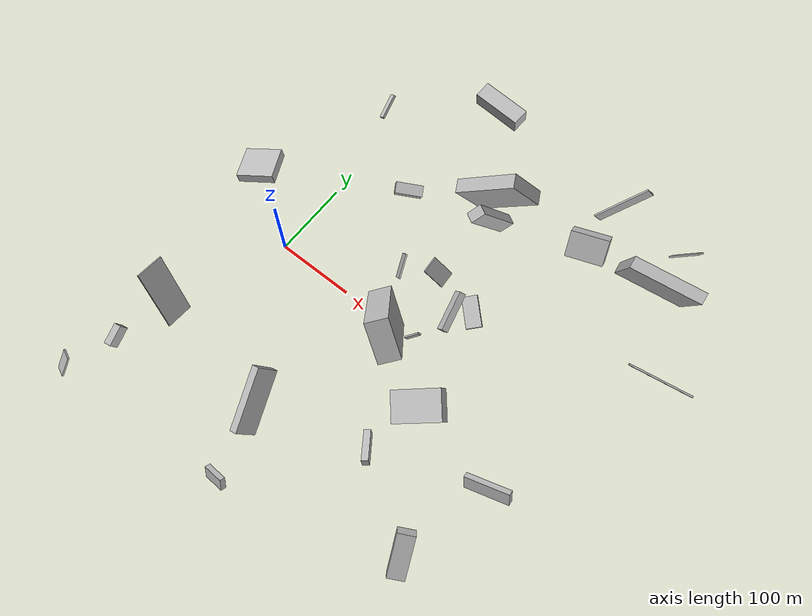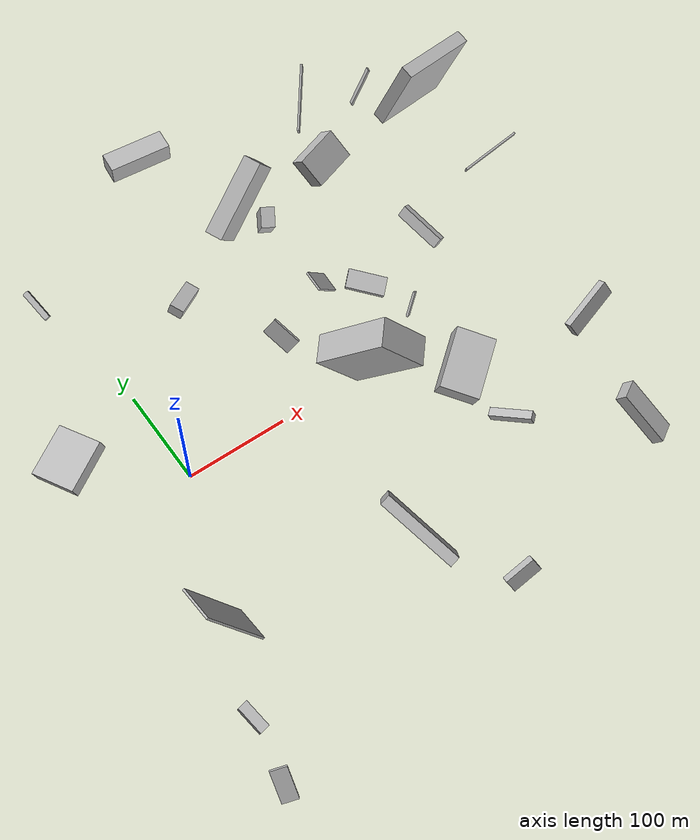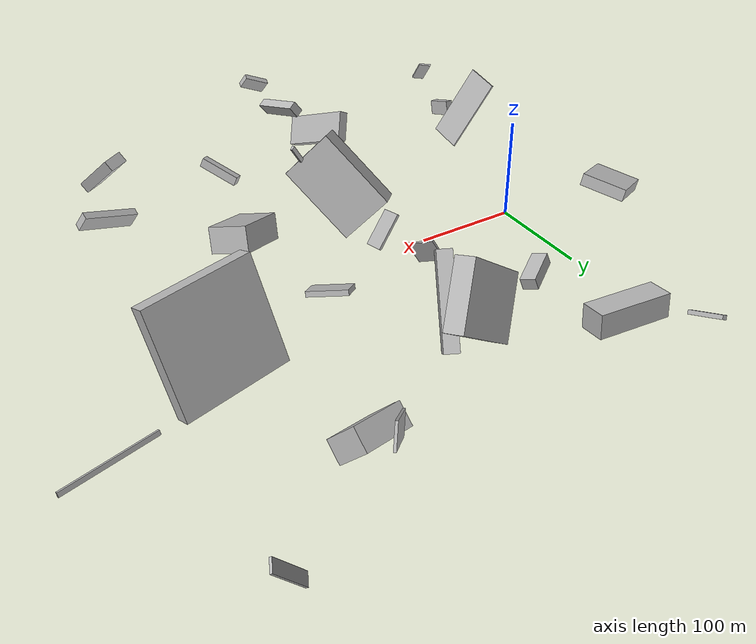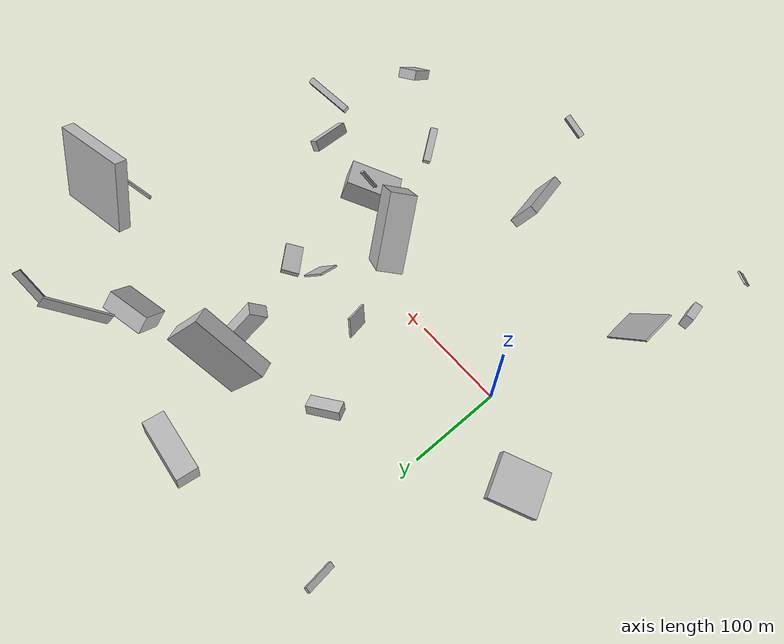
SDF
<sdf version="1.6">
 <world name="default">
  <scene>
   <sky><clouds><speed>12</speed></clouds></sky>
   <ambient>0.4 0.4 0.4 1</ambient>
   <background>0.7 0.7 0.7 1</background>
   <shadows>1</shadows>
  </scene>
  <gravity>0 0 -9.8066</gravity>
  <magnetic_field>6e-06 2.3e-05 -4.2e-05</magnetic_field>
  <physics default="0" name="default_physics" type="ode">
   <ode>
    <solver>
     <type>quick</type>
     <iters>10</iters>
     <sor>1.0</sor>
     <use_dynamic_moi_rescaling>0</use_dynamic_moi_rescaling>
    </solver>
    <constraints>
     <cfm>0</cfm>
     <erp>0.2</erp>
     <contact_max_correcting_vel>100</contact_max_correcting_vel>
     <contact_surface_layer>0.001</contact_surface_layer>
    </constraints>
   </ode>
   <max_step_size>0.004</max_step_size>
   <real_time_factor>1</real_time_factor>
   <real_time_update_rate>250</real_time_update_rate>
  </physics>
  <light name="sun" type="directional">
   <pose>0 0 10 0 0 0</pose>
   <diffuse>0.8 0.8 0.8 1</diffuse>
   <specular>0.2 0.2 0.2 1</specular>
   <attenuation>
    <range>1000</range>
    <constant>0.9</constant>
    <linear>0.01</linear>
    <quadratic>0.001</quadratic>
   </attenuation>
   <direction>-0.5 0.1 -0.9</direction>
  </light>
  <model name="building_1">
   <static>0</static>
   <pose>308.7840745752985 272.22991999487664 68.75958967545226 -0.6357820430948093 -0.007961976463220633 2.4669861925779997</pose>
   <link name="link">
    <gravity>0</gravity>
    <pose>0 0 9.5 0 0 0</pose>
    <collision name="collision"><geometry><box><size>2 67 19</size></box></geometry></collision>
    <visual name="visual">
     <cast_shadows>0</cast_shadows>
     <geometry><box><size>2 67 19</size></box></geometry>
     <material>
      <script>
       <uri>model://HANNAS_wall/materials/scripts</uri>
       <uri>model://HANNAS_wall/materials/textures</uri>
       <name>vrc/HANNAS_wall</name>
      </script>
     </material>
    </visual>
   </link>
  </model>
  <model name="building_2">
   <static>0</static>
   <pose>143.83098529914741 55.39754747345388 44.449182127909104 2.6657452438630824 -0.26057554864743504 -2.650999959253456</pose>
   <link name="link">
    <gravity>0</gravity>
    <pose>0 0 11.0 0 0 0</pose>
    <collision name="collision"><geometry><box><size>2 30 22</size></box></geometry></collision>
    <visual name="visual">
     <cast_shadows>0</cast_shadows>
     <geometry><box><size>2 30 22</size></box></geometry>
     <material>
      <script>
       <uri>model://HANNAS_wall/materials/scripts</uri>
       <uri>model://HANNAS_wall/materials/textures</uri>
       <name>vrc/HANNAS_wall</name>
      </script>
     </material>
    </visual>
   </link>
  </model>
  <model name="building_3">
   <static>0</static>
   <pose>397.44863163991 290.67174915145927 25.687397450771513 -2.424512895292618 0.9368688958037269 -2.9882040418300893</pose>
   <link name="link">
    <gravity>0</gravity>
    <pose>0 0 1.0 0 0 0</pose>
    <collision name="collision"><geometry><box><size>42 10 2</size></box></geometry></collision>
    <visual name="visual">
     <cast_shadows>0</cast_shadows>
     <geometry><box><size>42 10 2</size></box></geometry>
     <material>
      <script>
       <uri>model://HANNAS_wall/materials/scripts</uri>
       <uri>model://HANNAS_wall/materials/textures</uri>
       <name>vrc/HANNAS_wall</name>
      </script>
     </material>
    </visual>
   </link>
  </model>
  <model name="building_4">
   <static>0</static>
   <pose>186.98799595842698 63.15633073988944 75.3947070669845 -0.34652708124709847 -0.8204738249062611 -2.8744541087608435</pose>
   <link name="link">
    <gravity>0</gravity>
    <pose>0 0 1.0 0 0 0</pose>
    <collision name="collision"><geometry><box><size>33 20 2</size></box></geometry></collision>
    <visual name="visual">
     <cast_shadows>0</cast_shadows>
     <geometry><box><size>33 20 2</size></box></geometry>
     <material>
      <script>
       <uri>model://HANNAS_wall/materials/scripts</uri>
       <uri>model://HANNAS_wall/materials/textures</uri>
       <name>vrc/HANNAS_wall</name>
      </script>
     </material>
    </visual>
   </link>
  </model>
  <model name="building_5">
   <static>0</static>
   <pose>276.6743200845923 215.7186129921865 28.159391215765567 1.351157327305445 0.7294115463542892 1.6883235573132476</pose>
   <link name="link">
    <gravity>0</gravity>
    <pose>0 0 23.5 0 0 0</pose>
    <collision name="collision"><geometry><box><size>20 33 47</size></box></geometry></collision>
    <visual name="visual">
     <cast_shadows>0</cast_shadows>
     <geometry><box><size>20 33 47</size></box></geometry>
     <material>
      <script>
       <uri>model://HANNAS_wall/materials/scripts</uri>
       <uri>model://HANNAS_wall/materials/textures</uri>
       <name>vrc/HANNAS_wall</name>
      </script>
     </material>
    </visual>
   </link>
  </model>
  <model name="building_6">
   <static>0</static>
   <pose>163.17682792979528 -15.073081395739367 94.12427732634096 2.372557906813557 -0.24389878375002438 0.841616577350936</pose>
   <link name="link">
    <gravity>0</gravity>
    <pose>0 0 26.0 0 0 0</pose>
    <collision name="collision"><geometry><box><size>27 80 52</size></box></geometry></collision>
    <visual name="visual">
     <cast_shadows>0</cast_shadows>
     <geometry><box><size>27 80 52</size></box></geometry>
     <material>
      <script>
       <uri>model://HANNAS_wall/materials/scripts</uri>
       <uri>model://HANNAS_wall/materials/textures</uri>
       <name>vrc/HANNAS_wall</name>
      </script>
     </material>
    </visual>
   </link>
  </model>
  <model name="building_7">
   <static>0</static>
   <pose>150.12975383620602 -260.2685569589833 78.14247546153233 0.7704423070084611 0.9414539491785526 -0.9314214290452474</pose>
   <link name="link">
    <gravity>0</gravity>
    <pose>0 0 3.0 0 0 0</pose>
    <collision name="collision"><geometry><box><size>14 27 6</size></box></geometry></collision>
    <visual name="visual">
     <cast_shadows>0</cast_shadows>
     <geometry><box><size>14 27 6</size></box></geometry>
     <material>
      <script>
       <uri>model://HANNAS_wall/materials/scripts</uri>
       <uri>model://HANNAS_wall/materials/textures</uri>
       <name>vrc/HANNAS_wall</name>
      </script>
     </material>
    </visual>
   </link>
  </model>
  <model name="building_8">
   <static>0</static>
   <pose>257.85273456441183 -153.7866384260762 62.46907579512253 1.9399463578847016 0.18628972481341824 -2.458325907124283</pose>
   <link name="link">
    <gravity>0</gravity>
    <pose>0 0 19.5 0 0 0</pose>
    <collision name="collision"><geometry><box><size>8 9 39</size></box></geometry></collision>
    <visual name="visual">
     <cast_shadows>0</cast_shadows>
     <geometry><box><size>8 9 39</size></box></geometry>
     <material>
      <script>
       <uri>model://HANNAS_wall/materials/scripts</uri>
       <uri>model://HANNAS_wall/materials/textures</uri>
       <name>vrc/HANNAS_wall</name>
      </script>
     </material>
    </visual>
   </link>
  </model>
  <model name="building_9">
   <static>0</static>
   <pose>382.6782504958925 192.9249482764344 89.53019026581796 0.3532844729908395 0.07824573498613278 0.1764430056249797</pose>
   <link name="link">
    <gravity>0</gravity>
    <pose>0 0 40.0 0 0 0</pose>
    <collision name="collision"><geometry><box><size>80 13 80</size></box></geometry></collision>
    <visual name="visual">
     <cast_shadows>0</cast_shadows>
     <geometry><box><size>80 13 80</size></box></geometry>
     <material>
      <script>
       <uri>model://HANNAS_wall/materials/scripts</uri>
       <uri>model://HANNAS_wall/materials/textures</uri>
       <name>vrc/HANNAS_wall</name>
      </script>
     </material>
    </visual>
   </link>
  </model>
  <model name="building_10">
   <static>0</static>
   <pose>-52.8179532239395 -144.7720997901623 46.12270945832282 -0.44655396322156515 1.0408222577623247 -0.35210621416903454</pose>
   <link name="link">
    <gravity>0</gravity>
    <pose>0 0 1.0 0 0 0</pose>
    <collision name="collision"><geometry><box><size>80 35 2</size></box></geometry></collision>
    <visual name="visual">
     <cast_shadows>0</cast_shadows>
     <geometry><box><size>80 35 2</size></box></geometry>
     <material>
      <script>
       <uri>model://HANNAS_wall/materials/scripts</uri>
       <uri>model://HANNAS_wall/materials/textures</uri>
       <name>vrc/HANNAS_wall</name>
      </script>
     </material>
    </visual>
   </link>
  </model>
  <model name="building_11">
   <static>0</static>
   <pose>240.00918904306857 62.83135605681234 36.15287356119527 -2.8233257392720583 0.19044412238532013 -0.765669832340403</pose>
   <link name="link">
    <gravity>0</gravity>
    <pose>0 0 2.5 0 0 0</pose>
    <collision name="collision"><geometry><box><size>38 19 5</size></box></geometry></collision>
    <visual name="visual">
     <cast_shadows>0</cast_shadows>
     <geometry><box><size>38 19 5</size></box></geometry>
     <material>
      <script>
       <uri>model://HANNAS_wall/materials/scripts</uri>
       <uri>model://HANNAS_wall/materials/textures</uri>
       <name>vrc/HANNAS_wall</name>
      </script>
     </material>
    </visual>
   </link>
  </model>
  <model name="building_12">
   <static>0</static>
   <pose>-63.90070836670797 66.48687352988375 42.48647988072367 -2.594192097649926 -1.3077163025460474 3.073420445451388</pose>
   <link name="link">
    <gravity>0</gravity>
    <pose>0 0 24.0 0 0 0</pose>
    <collision name="collision"><geometry><box><size>12 44 48</size></box></geometry></collision>
    <visual name="visual">
     <cast_shadows>0</cast_shadows>
     <geometry><box><size>12 44 48</size></box></geometry>
     <material>
      <script>
       <uri>model://HANNAS_wall/materials/scripts</uri>
       <uri>model://HANNAS_wall/materials/textures</uri>
       <name>vrc/HANNAS_wall</name>
      </script>
     </material>
    </visual>
   </link>
  </model>
  <model name="building_13">
   <static>0</static>
   <pose>87.9928933723127 135.91294149852845 40.15567269408828 -1.2590600930849845 0.16537173834495253 0.5820139248570424</pose>
   <link name="link">
    <gravity>0</gravity>
    <pose>0 0 7.0 0 0 0</pose>
    <collision name="collision"><geometry><box><size>34 11 14</size></box></geometry></collision>
    <visual name="visual">
     <cast_shadows>0</cast_shadows>
     <geometry><box><size>34 11 14</size></box></geometry>
     <material>
      <script>
       <uri>model://HANNAS_wall/materials/scripts</uri>
       <uri>model://HANNAS_wall/materials/textures</uri>
       <name>vrc/HANNAS_wall</name>
      </script>
     </material>
    </visual>
   </link>
  </model>
  <model name="building_14">
   <static>0</static>
   <pose>272.0884415083147 -77.09533161235323 24.893202159302014 1.3391744387372229 0.3053959196053089 -2.505581593935873</pose>
   <link name="link">
    <gravity>0</gravity>
    <pose>0 0 19.0 0 0 0</pose>
    <collision name="collision"><geometry><box><size>59 25 38</size></box></geometry></collision>
    <visual name="visual">
     <cast_shadows>0</cast_shadows>
     <geometry><box><size>59 25 38</size></box></geometry>
     <material>
      <script>
       <uri>model://HANNAS_wall/materials/scripts</uri>
       <uri>model://HANNAS_wall/materials/textures</uri>
       <name>vrc/HANNAS_wall</name>
      </script>
     </material>
    </visual>
   </link>
  </model>
  <model name="building_15">
   <static>0</static>
   <pose>241.10006204083214 18.0204977942098 181.74160532533926 2.024677819130178 -0.9595528498310085 -0.17320150939945925</pose>
   <link name="link">
    <gravity>0</gravity>
    <pose>0 0 20.5 0 0 0</pose>
    <collision name="collision"><geometry><box><size>10 7 41</size></box></geometry></collision>
    <visual name="visual">
     <cast_shadows>0</cast_shadows>
     <geometry><box><size>10 7 41</size></box></geometry>
     <material>
      <script>
       <uri>model://HANNAS_wall/materials/scripts</uri>
       <uri>model://HANNAS_wall/materials/textures</uri>
       <name>vrc/HANNAS_wall</name>
      </script>
     </material>
    </visual>
   </link>
  </model>
  <model name="building_16">
   <static>0</static>
   <pose>90.40212908440378 276.18360623794587 99.3014849037322 1.5512154521584904 -0.13054374748597794 1.4905066518854306</pose>
   <link name="link">
    <gravity>0</gravity>
    <pose>0 0 30.0 0 0 0</pose>
    <collision name="collision"><geometry><box><size>20 19 60</size></box></geometry></collision>
    <visual name="visual">
     <cast_shadows>0</cast_shadows>
     <geometry><box><size>20 19 60</size></box></geometry>
     <material>
      <script>
       <uri>model://HANNAS_wall/materials/scripts</uri>
       <uri>model://HANNAS_wall/materials/textures</uri>
       <name>vrc/HANNAS_wall</name>
      </script>
     </material>
    </visual>
   </link>
  </model>
  <model name="building_17">
   <static>0</static>
   <pose>-69.8187755465493 -215.74082842841733 14.39928191090841 -1.8870052150717163 1.2806544259441373 1.4245678850808436</pose>
   <link name="link">
    <gravity>0</gravity>
    <pose>0 0 4.5 0 0 0</pose>
    <collision name="collision"><geometry><box><size>16 26 9</size></box></geometry></collision>
    <visual name="visual">
     <cast_shadows>0</cast_shadows>
     <geometry><box><size>16 26 9</size></box></geometry>
     <material>
      <script>
       <uri>model://HANNAS_wall/materials/scripts</uri>
       <uri>model://HANNAS_wall/materials/textures</uri>
       <name>vrc/HANNAS_wall</name>
      </script>
     </material>
    </visual>
   </link>
  </model>
  <model name="building_18">
   <static>0</static>
   <pose>335.35070535183763 -181.8972413617048 71.22371994650122 -3.0079131939232684 0.8433616979039965 2.1621044736285553</pose>
   <link name="link">
    <gravity>0</gravity>
    <pose>0 0 28.5 0 0 0</pose>
    <collision name="collision"><geometry><box><size>11 20 57</size></box></geometry></collision>
    <visual name="visual">
     <cast_shadows>0</cast_shadows>
     <geometry><box><size>11 20 57</size></box></geometry>
     <material>
      <script>
       <uri>model://HANNAS_wall/materials/scripts</uri>
       <uri>model://HANNAS_wall/materials/textures</uri>
       <name>vrc/HANNAS_wall</name>
      </script>
     </material>
    </visual>
   </link>
  </model>
  <model name="building_19">
   <static>0</static>
   <pose>458.34091042963905 137.5620062129352 16.670108195538525 -0.20271284808641163 -1.2503532397839043 -1.1965459246849808</pose>
   <link name="link">
    <gravity>0</gravity>
    <pose>0 0 1.0 0 0 0</pose>
    <collision name="collision"><geometry><box><size>4 80 2</size></box></geometry></collision>
    <visual name="visual">
     <cast_shadows>0</cast_shadows>
     <geometry><box><size>4 80 2</size></box></geometry>
     <material>
      <script>
       <uri>model://HANNAS_wall/materials/scripts</uri>
       <uri>model://HANNAS_wall/materials/textures</uri>
       <name>vrc/HANNAS_wall</name>
      </script>
     </material>
    </visual>
   </link>
  </model>
  <model name="building_20">
   <static>0</static>
   <pose>219.0625299557521 -25.940316361560942 115.95545006648251 -1.5084076477121815 -0.6301221832921572 -2.725539213410539</pose>
   <link name="link">
    <gravity>0</gravity>
    <pose>0 0 1.0 0 0 0</pose>
    <collision name="collision"><geometry><box><size>4 23 2</size></box></geometry></collision>
    <visual name="visual">
     <cast_shadows>0</cast_shadows>
     <geometry><box><size>4 23 2</size></box></geometry>
     <material>
      <script>
       <uri>model://HANNAS_wall/materials/scripts</uri>
       <uri>model://HANNAS_wall/materials/textures</uri>
       <name>vrc/HANNAS_wall</name>
      </script>
     </material>
    </visual>
   </link>
  </model>
  <model name="building_21">
   <static>0</static>
   <pose>193.18529715373217 201.37071354992187 55.76822557864662 0.2630898207433233 -0.6423950026631714 0.33089034433053294</pose>
   <link name="link">
    <gravity>0</gravity>
    <pose>0 0 28.5 0 0 0</pose>
    <collision name="collision"><geometry><box><size>80 17 57</size></box></geometry></collision>
    <visual name="visual">
     <cast_shadows>0</cast_shadows>
     <geometry><box><size>80 17 57</size></box></geometry>
     <material>
      <script>
       <uri>model://HANNAS_wall/materials/scripts</uri>
       <uri>model://HANNAS_wall/materials/textures</uri>
       <name>vrc/HANNAS_wall</name>
      </script>
     </material>
    </visual>
   </link>
  </model>
  <model name="building_22">
   <static>0</static>
   <pose>113.11504675000643 -176.65476959075568 49.37227978345779 1.0669272953090827 -0.3744816663779083 1.8846006848892525</pose>
   <link name="link">
    <gravity>0</gravity>
    <pose>0 0 5.0 0 0 0</pose>
    <collision name="collision"><geometry><box><size>76 30 10</size></box></geometry></collision>
    <visual name="visual">
     <cast_shadows>0</cast_shadows>
     <geometry><box><size>76 30 10</size></box></geometry>
     <material>
      <script>
       <uri>model://HANNAS_wall/materials/scripts</uri>
       <uri>model://HANNAS_wall/materials/textures</uri>
       <name>vrc/HANNAS_wall</name>
      </script>
     </material>
    </visual>
   </link>
  </model>
  <model name="building_23">
   <static>0</static>
   <pose>-86.85250980577138 -287.2616138688991 23.805693406486547 -0.6456416566784999 -0.17262828435858685 -0.3626102162061371</pose>
   <link name="link">
    <gravity>0</gravity>
    <pose>0 0 15.5 0 0 0</pose>
    <collision name="collision"><geometry><box><size>14 2 31</size></box></geometry></collision>
    <visual name="visual">
     <cast_shadows>0</cast_shadows>
     <geometry><box><size>14 2 31</size></box></geometry>
     <material>
      <script>
       <uri>model://HANNAS_wall/materials/scripts</uri>
       <uri>model://HANNAS_wall/materials/textures</uri>
       <name>vrc/HANNAS_wall</name>
      </script>
     </material>
    </visual>
   </link>
  </model>
  <model name="building_24">
   <static>0</static>
   <pose>187.93583297538663 155.08332559747691 59.43142193213108 -0.9267655192289658 0.04871094639685236 -0.508142429992303</pose>
   <link name="link">
    <gravity>0</gravity>
    <pose>0 0 9.5 0 0 0</pose>
    <collision name="collision"><geometry><box><size>13 80 19</size></box></geometry></collision>
    <visual name="visual">
     <cast_shadows>0</cast_shadows>
     <geometry><box><size>13 80 19</size></box></geometry>
     <material>
      <script>
       <uri>model://HANNAS_wall/materials/scripts</uri>
       <uri>model://HANNAS_wall/materials/textures</uri>
       <name>vrc/HANNAS_wall</name>
      </script>
     </material>
    </visual>
   </link>
  </model>
  <model name="building_25">
   <static>0</static>
   <pose>-26.10630288154387 236.9644987436767 15.439309268979594 2.673808888057734 -0.3620191791055682 1.7406552945796379</pose>
   <link name="link">
    <gravity>0</gravity>
    <pose>0 0 2.0 0 0 0</pose>
    <collision name="collision"><geometry><box><size>33 6 4</size></box></geometry></collision>
    <visual name="visual">
     <cast_shadows>0</cast_shadows>
     <geometry><box><size>33 6 4</size></box></geometry>
     <material>
      <script>
       <uri>model://HANNAS_wall/materials/scripts</uri>
       <uri>model://HANNAS_wall/materials/textures</uri>
       <name>vrc/HANNAS_wall</name>
      </script>
     </material>
    </visual>
   </link>
  </model>
  <model name="building_26">
   <static>0</static>
   <pose>397.85646185651785 -89.65499655763807 72.470577484128 -1.935633324518262 0.46766248560903 1.6284715527927582</pose>
   <link name="link">
    <gravity>0</gravity>
    <pose>0 0 26.0 0 0 0</pose>
    <collision name="collision"><geometry><box><size>7 16 52</size></box></geometry></collision>
    <visual name="visual">
     <cast_shadows>0</cast_shadows>
     <geometry><box><size>7 16 52</size></box></geometry>
     <material>
      <script>
       <uri>model://HANNAS_wall/materials/scripts</uri>
       <uri>model://HANNAS_wall/materials/textures</uri>
       <name>vrc/HANNAS_wall</name>
      </script>
     </material>
    </visual>
   </link>
  </model>
 </world>
</sdf>
